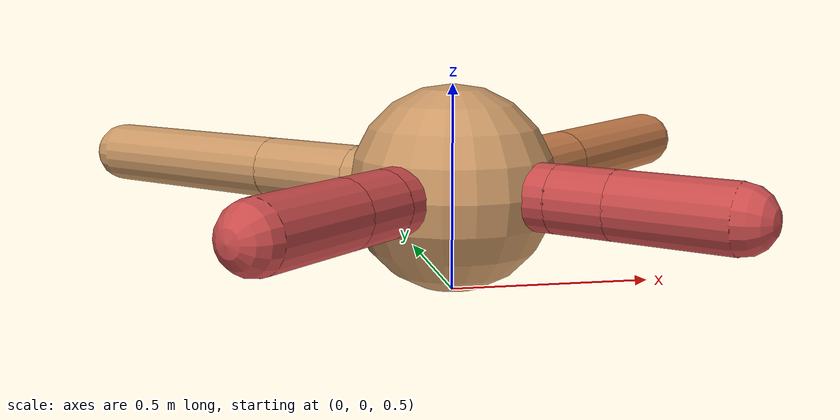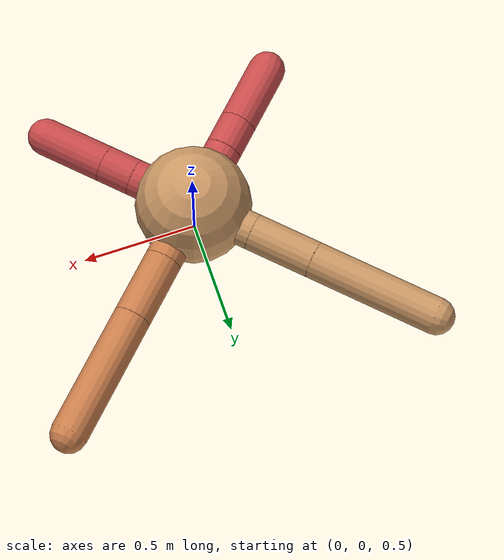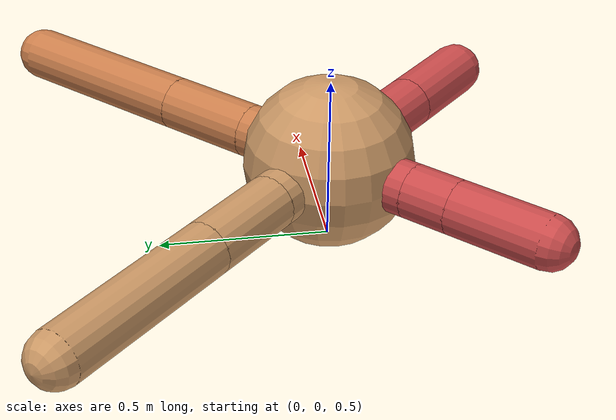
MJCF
<mujoco model="disabled_ant">
  <compiler inertiafromgeom="true" angle="degree" coordinate="local"/>
  <option timestep="0.01" integrator="RK4"/>
  <custom>
    <numeric data="0.0 0.0 0.55 1.0 0.0 0.0 0.0 0.0 1.0 0.0 -1.0 0.0 -1.0 0.0 1.0" name="init_qpos"/>
  </custom>
  <default>
    <joint armature="1" damping="1" limited="true"/>
    <geom friction="1.5 0.5 0.5" density="5.0" margin="0.01" condim="3" conaffinity="0" rgba="0.8 0.6 0.4 1"/>
  </default>
  <worldbody>
    <body name="torso" pos="0 0 0.75">
      <geom name="torso_geom" pos="0 0 0" size="0.25" type="sphere"/>
      <body name="front_left_leg" pos="0 0 0">
        <geom fromto="0.0 0.0 0.0 0.2 0.2 0.0" name="aux_1_geom" size="0.08" type="capsule" rgba=".8 .5 .3 1"/>
        <body name="aux_1" pos="0.2 0.2 0">
          <joint axis="0 0 1" name="hip_1" pos="0.0 0.0 0.0" range="-30 30" type="hinge"/>
          <geom fromto="0.0 0.0 0.0 0.2 0.2 0.0" name="left_leg_geom" size="0.08" type="capsule" rgba=".8 .5 .3 1"/>
          <body pos="0.2 0.2 0" name="front_left_foot">
            <joint axis="-1 1 0" name="ankle_1" pos="0.0 0.0 0.0" range="30 70" type="hinge"/>
            <geom fromto="0.0 0.0 0.0 0.4 0.4 0.0" name="left_ankle_geom" size="0.08" type="capsule" rgba=".8 .5 .3 1"/>
          </body>
        </body>
      </body>
      <body name="front_right_leg" pos="0 0 0">
        <geom fromto="0.0 0.0 0.0 -0.2 0.2 0.0" name="aux_2_geom" size="0.08" type="capsule"/>
        <body name="aux_2" pos="-0.2 0.2 0">
          <joint axis="0 0 1" name="hip_2" pos="0.0 0.0 0.0" range="-30 30" type="hinge"/>
          <geom fromto="0.0 0.0 0.0 -0.2 0.2 0.0" name="right_leg_geom" size="0.08" type="capsule"/>
          <body pos="-0.2 0.2 0" name="front_right_foot">
            <joint axis="1 1 0" name="ankle_2" pos="0.0 0.0 0.0" range="-70 -30" type="hinge"/>
            <geom fromto="0.0 0.0 0.0 -0.4 0.4 0.0" name="right_ankle_geom" size="0.08" type="capsule"/>
          </body>
        </body>
      </body>
      <body name="left_back_leg" pos="0 0 0">
        <geom fromto="0.0 0.0 0.0 -0.2 -0.2 0.0" name="aux_3_geom" size="0.08" type="capsule" rgba=".8 .3 .3 1.0"/>
        <body name="aux_3" pos="-0.2 -0.2 0">
          <joint axis="0 0 1" name="hip_3" pos="0.0 0.0 0.0" range="-30 30" type="hinge"/>
          <geom fromto="0.0 0.0 0.0 -0.1 -0.1 0.0" name="back_leg_geom" size="0.08" type="capsule" rgba=".8 .3 .3 1.0"/>
          <body pos="-0.1 -0.1 0" name="left_back_foot">
            <joint axis="-1 1 0" name="ankle_3" pos="0.0 0.0 0.0" range="-70 -30" type="hinge"/>
            <geom fromto="0.0 0.0 0.0 -0.2 -0.2 0.0" name="third_ankle_geom" size="0.08" type="capsule" rgba=".8 .3 .3 1.0"/>
          </body>
        </body>
      </body>
      <body name="right_back_leg" pos="0 0 0">
        <geom fromto="0.0 0.0 0.0 0.2 -0.2 0.0" name="aux_4_geom" size="0.08" type="capsule" rgba=".8 .3 .3 1.0"/>
        <body name="aux_4" pos="0.2 -0.2 0">
          <joint axis="0 0 1" name="hip_4" pos="0.0 0.0 0.0" range="-30 30" type="hinge"/>
          <geom fromto="0.0 0.0 0.0 0.1 -0.1 0.0" name="rightback_leg_geom" size="0.08" type="capsule" rgba=".8 .3 .3 1.0"/>
          <body pos="0.1 -0.1 0" name="right_back_foot">
            <joint axis="1 1 0" name="ankle_4" pos="0.0 0.0 0.0" range="30 70" type="hinge"/>
            <geom fromto="0.0 0.0 0.0 0.2 -0.2 0.0" name="fourth_ankle_geom" size="0.08" type="capsule" rgba=".8 .3 .3 1.0"/>
          </body>
        </body>
      </body>
    </body>
  </worldbody>
  <actuator>
    <motor ctrllimited="true" ctrlrange="-1.0 1.0" joint="hip_1" gear="150"/>
    <motor ctrllimited="true" ctrlrange="-1.0 1.0" joint="ankle_1" gear="150"/>
    <motor ctrllimited="true" ctrlrange="-1.0 1.0" joint="hip_2" gear="150"/>
    <motor ctrllimited="true" ctrlrange="-1.0 1.0" joint="ankle_2" gear="150"/>
    <motor ctrllimited="true" ctrlrange="-1.0 1.0" joint="hip_3" gear="1"/>
    <motor ctrllimited="true" ctrlrange="-1.0 1.0" joint="ankle_3" gear="1"/>
    <motor ctrllimited="true" ctrlrange="-1.0 1.0" joint="hip_4" gear="1"/>
    <motor ctrllimited="true" ctrlrange="-1.0 1.0" joint="ankle_4" gear="1"/>
  </actuator>
</mujoco>
